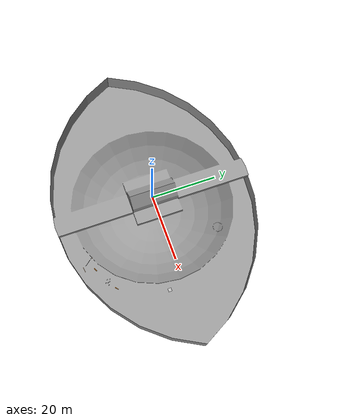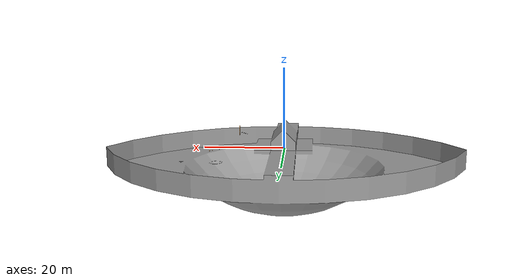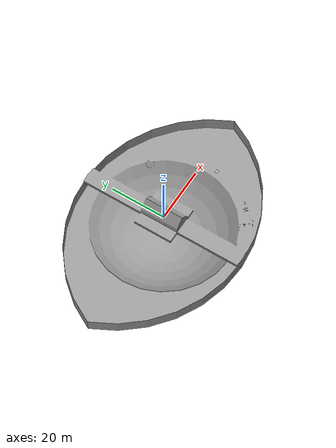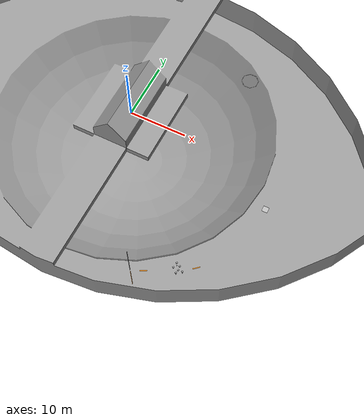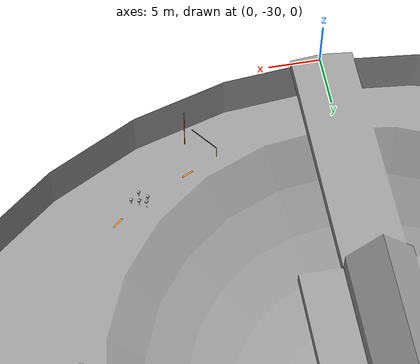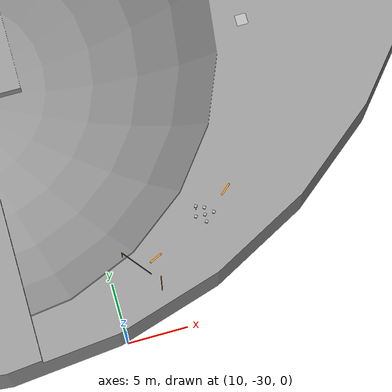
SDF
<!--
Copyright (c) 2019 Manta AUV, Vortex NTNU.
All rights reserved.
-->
<sdf version="1.5">
 <world name="empty_underwater">
  <physics name="default_physics" default="true" type="ode">
   <max_step_size>0.002</max_step_size>
   <real_time_factor>1</real_time_factor>
   <real_time_update_rate>500</real_time_update_rate>
   <ode><solver><type>quick</type><iters>50</iters><sor>0.5</sor></solver></ode>
  </physics>
  <scene>
   <ambient>0.01 0.01 0.01 1.0</ambient>
   <sky><clouds><speed>12</speed></clouds></sky>
   <shadows>1</shadows>
   <fog>
    <color>0.0039 0.26 0.415 1.0</color>
    <type>linear</type>
    <density>0.2</density>
    <start>10</start>
    <end>40</end>
   </fog>
  </scene>
  <spherical_coordinates>
   <latitude_deg>56.71897669633431</latitude_deg>
   <longitude_deg>3.515625</longitude_deg>
  </spherical_coordinates>
  <include><uri>model://sun</uri></include>
  <include><uri>model://octagon</uri><pose>15 15 -0.1 0 0 0</pose></include>
  <include><uri>model://pool</uri></include>
  <include><name>gate_side_a</name><pose>12.4 -23.6 -0.9 0 0 -0.9</pose><uri>model://2018/gate</uri></include>
  <include><name>dice_side_a</name><pose>19.0 -20.2 -5.0 0 0 -0.6</pose><uri>model://2018/dice</uri></include>
  <include>
   <name>path_marker1_side_a</name>
   <pose>14.2 -22.6 -5.0 0 0 -1.13</pose>
   <uri>model://2018/path_markers</uri>
  </include>
  <include>
   <name>path_marker2_side_a</name>
   <pose>21.5 -18.4 -5.0 0 0 -0.85</pose>
   <uri>model://2018/path_markers</uri>
  </include>
  <include><name>roulette</name><pose>27.0 -4.1 -5.0 0 0 0</pose><uri>model://2018/roulette</uri></include>
  <light type="directional" name="sun4">
   <pose>8 -19 10 1.75 0 2.9</pose>
   <diffuse>0.8 0.8 0.8 1</diffuse>
   <specular>0.2 0.2 0.2 1</specular>
   <attenuation>
    <range>1000</range>
    <constant>0.9</constant>
    <linear>0.01</linear>
    <quadratic>0.001</quadratic>
   </attenuation>
   <direction>-0.5 0.1 -0.9</direction>
  </light>
  <plugin name="sc_interface" filename="libuuv_sc_ros_interface_plugin.so"/>
 </world>
</sdf>

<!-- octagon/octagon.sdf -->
<sdf version='1.5'>

  <model name='octagon'>
    <pose>0 0 0 0 0 0</pose>
    <self_collide> 0 </self_collide>
    <static> 1</static>

    <link name='rod1'>
        <pose>0 1.35 0 0 1.5707 0</pose>
        <visual name='rod1_vis'>
          <geometry>
            <cylinder>
              <radius>0.0254</radius>
              <length>1.118</length>
            </cylinder>
          </geometry>
        <material>
          <script>
            <uri>file://media/materials/scripts/gazebo.material</uri>
            <name>Gazebo/White</name>
          </script>
          <diffuse>0.3 0.3 0.3 1</diffuse>
        </material>
        </visual>
        <collision name='rod1_collide'>
          <geometry>
            <cylinder>
              <radius>0.0254</radius>
              <length>1.118</length>
            </cylinder>
          </geometry>
        </collision>
    </link>

    <link name='rod2'>
        <pose>0 -1.35 0 0 1.5707 0</pose>
        <visual name='rod2_vis'>
          <geometry>
            <cylinder>
              <radius>0.0254</radius>
              <length>1.118</length>
            </cylinder>
          </geometry>
        <material>
          <script>
            <uri>file://media/materials/scripts/gazebo.material</uri>
            <name>Gazebo/White</name>
          </script>
          <diffuse>0.3 0.3 0.3 1</diffuse>
        </material>
        </visual>
        <collision name='rod2_collide'>
          <geometry>
            <cylinder>
              <radius>0.0254</radius>
              <length>1.118</length>
            </cylinder>
          </geometry>
        </collision>
    </link>

    <link name='rod3'>
        <pose>1.35 0 0 0 1.5707 1.5707</pose>
        <visual name='rod3_vis'>
          <geometry>
            <cylinder>
              <radius>0.0254</radius>
              <length>1.118</length>
            </cylinder>
          </geometry>
        <material>
          <script>
            <uri>file://media/materials/scripts/gazebo.material</uri>
            <name>Gazebo/White</name>
          </script>
          <diffuse>0.3 0.3 0.3 1</diffuse>
        </material>
        </visual>
        <collision name='rod3_collide'>
          <geometry>
            <cylinder>
              <radius>0.0254</radius>
              <length>1.118</length>
            </cylinder>
          </geometry>
        </collision>
    </link>

    <link name='rod4'>
        <pose>-1.35 0 0 0 1.5707 1.5707</pose>
        <visual name='rod4_vis'>
          <geometry>
            <cylinder>
              <radius>0.0254</radius>
              <length>1.118</length>
            </cylinder>
          </geometry>
        <material>
          <script>
            <uri>file://media/materials/scripts/gazebo.material</uri>
            <name>Gazebo/White</name>
          </script>
          <diffuse>0.3 0.3 0.3 1</diffuse>
        </material>
        </visual>
        <collision name='rod4_collide'>
          <geometry>
            <cylinder>
              <radius>0.0254</radius>
              <length>1.118</length>
            </cylinder>
          </geometry>
        </collision>
    </link>

    <link name='rod5'>
        <pose>0.95 0.95 0 0 1.5707 2.356</pose>
        <visual name='rod5_vis'>
          <geometry>
            <cylinder>
              <radius>0.0254</radius>
              <length>1.118</length>
            </cylinder>
          </geometry>
        <material>
          <script>
            <uri>file://media/materials/scripts/gazebo.material</uri>
            <name>Gazebo/White</name>
          </script>
          <diffuse>0.3 0.3 0.3 1</diffuse>
        </material>
        </visual>
        <collision name='rod5_collide'>
          <geometry>
            <cylinder>
              <radius>0.0254</radius>
              <length>1.118</length>
            </cylinder>
          </geometry>
        </collision>
    </link>

    <link name='rod6'>
        <pose>-0.95 0.95 0 0 1.5707 -2.356</pose>
        <visual name='rod6_vis'>
          <geometry>
            <cylinder>
              <radius>0.0254</radius>
              <length>1.118</length>
            </cylinder>
          </geometry>
        <material>
          <script>
            <uri>file://media/materials/scripts/gazebo.material</uri>
            <name>Gazebo/White</name>
          </script>
          <diffuse>0.3 0.3 0.3 1</diffuse>
        </material>
        </visual>
        <collision name='rod6_collide'>
          <geometry>
            <cylinder>
              <radius>0.0254</radius>
              <length>1.118</length>
            </cylinder>
          </geometry>
        </collision>
    </link>

    <link name='rod7'>
        <pose>-0.95 -0.95 0 0 1.5707 2.356</pose>
        <visual name='rod7_vis'>
          <geometry>
            <cylinder>
              <radius>0.0254</radius>
              <length>1.118</length>
            </cylinder>
          </geometry>
        <material>
          <script>
            <uri>file://media/materials/scripts/gazebo.material</uri>
            <name>Gazebo/White</name>
          </script>
          <diffuse>0.3 0.3 0.3 1</diffuse>
        </material>
        </visual>
        <collision name='rod7_collide'>
          <geometry>
            <cylinder>
              <radius>0.0254</radius>
              <length>1.118</length>
            </cylinder>
          </geometry>
        </collision>
    </link>

    <link name='rod8'>
        <pose>0.95 -0.95 0 0 1.5707 -2.356</pose>
        <visual name='rod8_vis'>
          <geometry>
            <cylinder>
              <radius>0.0254</radius>
              <length>1.118</length>
            </cylinder>
          </geometry>
        <material>
          <script>
            <uri>file://media/materials/scripts/gazebo.material</uri>
            <name>Gazebo/White</name>
          </script>
          <diffuse>0.3 0.3 0.3 1</diffuse>
        </material>
        </visual>
        <collision name='rod8_collide'>
          <geometry>
            <cylinder>
              <radius>0.0254</radius>
              <length>1.118</length>
            </cylinder>
          </geometry>
        </collision>
    </link>
  </model>
</sdf>

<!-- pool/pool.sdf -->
<sdf version='1.5'>

  <model name='transdec_pool'>
    <pose>0 0 0 0 0 0</pose>
    <self_collide> 0 </self_collide>
    <static> 1</static>

    <link name='pool'>
      <pose>0 0 0 0 0 0</pose>
      <visual name='pool_visual'>
        <geometry>
            <mesh><uri>file://pool/pool.dae</uri></mesh>
        </geometry>
        <material>
            <script>
              <uri>file://media/materials/scripts/gazebo.material</uri>
              <name>Gazebo/Grey</name>
            </script>
          </material>
      </visual>
      <collision name='pool_collision'>
        <geometry>
            <mesh><uri>file://pool/pool.dae</uri></mesh>
        </geometry>
      </collision>
    </link>

  </model>
</sdf>

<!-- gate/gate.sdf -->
<sdf version='1.5'>

  <model name='gate'>
    <pose>0 0 0 0 0 0</pose>
    <self_collide> 0 </self_collide>
    <static> 1</static>

    <link name='gate_top'>
      <pose>0 0 0 0 1.5707 0</pose>
      <visual name='gate_top_vis'>
        <geometry>
          <cylinder>
            <radius>0.0381</radius>
            <length>3.05</length>
          </cylinder>
        </geometry>
        <material>
          <script>
            <uri>file://media/materials/scripts/gazebo.material</uri>
            <name>Gazebo/FlatBlack</name>
          </script>
        </material>
      </visual>
      <collision name='gate_top_collide'>
        <geometry>
          <cylinder>
            <radius>0.0381</radius>
            <length>3.05</length>
          </cylinder>
        </geometry>
      </collision>
    </link>

    <link name='gate_right'>
      <pose>2.525 0 -0.762 0 0 0</pose>
      <visual name='gate_right_vis'>
        <geometry>
          <cylinder>
            <radius>0.0381</radius>
            <length>5.21</length>
          </cylinder>
        </geometry>
        <material>
          <script>
            <uri>file://media/materials/scripts/gazebo.material</uri>
            <name>Gazebo/Orange</name>
          </script>
          <diffuse>0.6 0.3088 0.0468 1</diffuse>
        </material>
      </visual>
      <visual name='gate_right_top'>
        <pose>0 0 0.6858 0 0 0</pose>
        <geometry>
          <cylinder>
            <radius>0.0381</radius>
            <length>0.16</length>
          </cylinder>
        </geometry>
        <material>
          <script>
            <uri>file://media/materials/scripts/gazebo.material</uri>
            <name>Gazebo/FlatBlack</name>
          </script>
        </material>
      </visual>
      <visual name='gate_right_bottom'>
        <pose>0 0 -0.6858 0 0 0</pose>
        <geometry>
          <cylinder>
            <radius>0.0381</radius>
            <length>0.16</length>
          </cylinder>
        </geometry>
        <material>
          <script>
              <uri>file://media/materials/scripts/gazebo.material</uri>
              <name>Gazebo/FlatBlack</name>
          </script>
        </material>
      </visual>
      <collision name='gate_right_collide'>
        <geometry>
          <cylinder>
            <radius>0.0381</radius>
            <length>1.52</length>
          </cylinder>
        </geometry>
      </collision>
    </link>

    <link name='gate_left'>
      <pose>-1.525 0 -0.762 0 0 0</pose>
      <visual name='gate_left_vis'>
        <geometry>
          <cylinder>
            <radius>0.0381</radius>
            <length>1.21</length>
          </cylinder>
        </geometry>
        <material>
          <script>
            <uri>file://media/materials/scripts/gazebo.material</uri>
            <name>Gazebo/Orange</name>
          </script>
          <diffuse>0.6 0.3088 0.0468 1</diffuse>
        </material>
      </visual>
      <visual name='gate_left_top'>
        <pose>0 0 0.6858 0 0 0</pose>
        <geometry>
          <cylinder>
            <radius>0.0381</radius>
            <length>0.16</length>
          </cylinder>
        </geometry>
        <material>
          <script>
            <uri>file://media/materials/scripts/gazebo.material</uri>
            <name>Gazebo/FlatBlack</name>
          </script>
        </material>
      </visual>
      <visual name='gate_left_bottom'>
        <pose>0 0 -0.6858 0 0 0</pose>
        <geometry>
          <cylinder>
            <radius>0.0381</radius>
            <length>0.16</length>
          </cylinder>
        </geometry>
        <material>
          <script>
              <uri>file://media/materials/scripts/gazebo.material</uri>
              <name>Gazebo/FlatBlack</name>
          </script>
        </material>
      </visual>
      <collision name='gate_left_collide'>
        <geometry>
          <cylinder>
            <radius>0.0381</radius>
            <length>1.52</length>
          </cylinder>
        </geometry>
      </collision>
    </link>

  </model>
</sdf>

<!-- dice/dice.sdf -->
<sdf version='1.5'>

  <model name='dice'>
    <pose>0 0 0 0 0 0</pose>
    <self_collide> 0 </self_collide>
    <static> 1</static>

    <link name='one_dice'>
      <pose>0.80 0.5 0.75 0 0 0</pose>
      <visual name='one_dice_vis'>
        <geometry>
          <box>
            <size>0.23 0.23 0.23</size>
          </box>
        </geometry>
        <material>
          <script>
            <uri>model://2018/dice/materials/scripts</uri>
            <uri>model://2018/dice/materials/textures</uri>
            <name>OneFace</name>
          </script>
        </material>
      </visual>

      <visual name='one_dice_cable'>
        <pose> 0 0 -0.375 0 0 0</pose>
        <geometry>
          <cylinder>
            <radius> 0.006 </radius>
            <length> 0.75 </length>
          </cylinder>
        </geometry>
        <material>
          <script>
            <uri> file://media/materials/scripts/gazebo.material</uri>
            <name> Gazebo/Grey </name>
          </script>
        </material>
      </visual>

      <collision name='one_dice_collide'>
        <geometry>
          <box>
            <size>0.23 0.23 0.23</size>
          </box>
        </geometry>
      </collision>
    </link>

    <link name='two_dice'>
      <pose>-0.75 0.35 1.25 0 0 0</pose>
      <visual name='two_dice_vis'>
        <geometry>
          <box>
            <size>0.23 0.23 0.23</size>
          </box>
        </geometry>
        <material>
          <script>
            <uri>model://2018/dice/materials/scripts</uri>
            <uri>model://2018/dice/materials/textures</uri>
            <name>TwoFace</name>
          </script>
        </material>
      </visual>

      <visual name='two_dice_cable'>
        <pose> 0 0 -0.625 0 0 0</pose>
        <geometry>
          <cylinder>
            <radius> 0.006 </radius>
            <length> 1.25 </length>
          </cylinder>
        </geometry>
        <material>
          <script>
            <uri> file://media/materials/scripts/gazebo.material</uri>
            <name> Gazebo/Grey </name>
          </script>
        </material>
      </visual>

      <collision name='two_dice_collide'>
        <geometry>
          <box>
            <size>0.23 0.23 0.23</size>
          </box>
        </geometry>
      </collision>
    </link>

    <link name='three_dice'>
      <pose>-0.05 0.50 1.15 0 0 0</pose>
      <visual name='three_dice_vis'>
        <geometry>
          <box>
            <size>0.23 0.23 0.23</size>
          </box>
        </geometry>
        <material>
          <script>
            <uri>model://2018/dice/materials/scripts</uri>
            <uri>model://2018/dice/materials/textures</uri>
            <name>ThreeFace</name>
          </script>
        </material>
      </visual>

      <visual name='three_dice_cable'>
        <pose> 0 0 -0.575 0 0 0</pose>
        <geometry>
          <cylinder>
            <radius> 0.006 </radius>
            <length> 1.15 </length>
          </cylinder>
        </geometry>
        <material>
          <script>
            <uri> file://media/materials/scripts/gazebo.material</uri>
            <name> Gazebo/Grey </name>
          </script>
        </material>
      </visual>

      <collision name='three_dice_collide'>
        <geometry>
          <box>
            <size>0.23 0.23 0.23</size>
          </box>
        </geometry>
      </collision>
    </link>

    <link name='four_dice'>
      <pose>0.5 -0.5 0.8 0 0 0</pose>
      <visual name='four_dice_vis'>
        <geometry>
          <box>
            <size>0.23 0.23 0.23</size>
          </box>
        </geometry>
        <material>
          <script>
            <uri>model://2018/dice/materials/scripts</uri>
            <uri>model://2018/dice/materials/textures</uri>
            <name>FourFace</name>
          </script>
        </material>
      </visual>

      <visual name='four_dice_cable'>
        <pose> 0 0 -0.4 0 0 0</pose>
        <geometry>
          <cylinder>
            <radius> 0.006 </radius>
            <length> 0.8 </length>
          </cylinder>
        </geometry>
        <material>
          <script>
            <uri> file://media/materials/scripts/gazebo.material</uri>
            <name> Gazebo/Grey </name>
          </script>
        </material>
      </visual>

      <collision name='four_dice_collide'>
        <geometry>
          <box>
            <size>0.23 0.23 0.23</size>
          </box>
        </geometry>
      </collision>
    </link>

    <link name='five_dice'>
      <pose>0.15 0.10 0.5 0 0 0</pose>
      <visual name='five_dice_vis'>
        <geometry>
          <box>
            <size>0.23 0.23 0.23</size>
          </box>
        </geometry>
        <material>
          <script>
            <uri>model://2018/dice/materials/scripts</uri>
            <uri>model://2018/dice/materials/textures</uri>
            <name>FiveFace</name>
          </script>
        </material>
      </visual>

      <visual name='five_dice_cable'>
        <pose> 0 0 -0.25 0 0 0</pose>
        <geometry>
          <cylinder>
            <radius> 0.006 </radius>
            <length> 0.5 </length>
          </cylinder>
        </geometry>
        <material>
          <script>
            <uri> file://media/materials/scripts/gazebo.material</uri>
            <name> Gazebo/Grey </name>
          </script>
        </material>
      </visual>

      <collision name='five_dice_collide'>
        <geometry>
          <box>
            <size>0.23 0.23 0.23</size>
          </box>
        </geometry>
      </collision>
    </link>

    <link name='six_dice'>
      <pose>-0.5 -0.4 0.85 0 0 0</pose>
      <visual name='six_dice_vis'>
        <geometry>
          <box>
            <size>0.23 0.23 0.23</size>
          </box>
        </geometry>
        <material>
          <script>
            <uri>model://2018/dice/materials/scripts</uri>
            <uri>model://2018/dice/materials/textures</uri>
            <name>SixFace</name>
          </script>
        </material>
      </visual>

      <visual name='six_dice_cable'>
        <pose> 0 0 -0.425 0 0 0</pose>
        <geometry>
          <cylinder>
            <radius> 0.006 </radius>
            <length> 0.85 </length>
          </cylinder>
        </geometry>
        <material>
          <script>
            <uri> file://media/materials/scripts/gazebo.material</uri>
            <name> Gazebo/Grey </name>
          </script>
        </material>
      </visual>

      <collision name='six_dice_collide'>
        <geometry>
          <box>
            <size>0.23 0.23 0.23</size>
          </box>
        </geometry>
      </collision>
    </link>

  </model>

</sdf>

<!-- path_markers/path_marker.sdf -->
<sdf version='1.5'>

  <model name='path_marker'>
    <pose>0 0 0 0 0 0</pose>
    <self_collide> 0 </self_collide>
    <static> 1</static>

    <link name='top'>
      <pose>0 0 0 0 0 0</pose>
      <visual name='top_vis'>
        <geometry>
            <box><size>0.15 1.2 0.02</size></box>
        </geometry>
        <material>
          <script>
            <uri>file://media/materials/scripts/gazebo.material</uri>
            <name>Gazebo/Orange</name>
          </script>
          <diffuse>0.6 0.3088 0.0468 1</diffuse>
        </material>
      </visual>
      <collision name='red_collide'>
        <pose>0 0 0 0 0 0</pose>
        <geometry>
            <box><size>0.15 1.2 0.02</size></box>
        </geometry>
      </collision>
    </link>

    <link name='legs'>
      <visual name='leg1'>
        <pose>0 0.5 -0.225 0 0 0</pose>
        <geometry>
          <cylinder>
            <radius>0.01</radius>
            <length>0.45</length>
          </cylinder>
        </geometry>
      </visual>
      <visual name='leg2'>
        <pose>0 -0.5 -0.225 0 0 0</pose>
        <geometry>
          <cylinder>
            <radius>0.01</radius>
            <length>0.45</length>
          </cylinder>
        </geometry>
      </visual>
      <visual name='leg_link'>
        <pose>0 0 -0.45 1.5707 0 0</pose>
        <geometry>
          <cylinder>
            <radius>0.01</radius>
            <length>1</length>
          </cylinder>
        </geometry>
      </visual>
      <collision name='leg_col'>
        <pose>0 0 -0.225 0 0 0</pose>
          <geometry>
            <box><size>0.15 1.2 0.45</size></box>
          </geometry>
      </collision>
    </link>

  </model>
</sdf>

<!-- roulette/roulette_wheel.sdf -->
<sdf version='1.5'>
  <model name='roulette_wheel'>

    <pose> 0 0 0 0 0 0</pose>
    <self_collide> 0 </self_collide>
    <static>0</static>

    <joint name='rotation_joint' type="revolute">
      <parent> roulette_stock </parent>
      <child> roulette_wheel </child>
      <axis>
        <xyz> 0 0 1 </xyz>
      </axis>
      <physics>
        <ode>
          <velocity> 1 </velocity>
        </ode>
      </physics>
    </joint>

    <link name='roulette_wheel'>
      <pose> 0 0 0.35 0 0 0</pose>
      <visual name='roulette_top'>
        <geometry>
          <box>
            <size>1.0 1.00 0.001</size>
          </box>
        </geometry>
        <material>
          <script>
            <uri>model://2018/roulette/materials/scripts</uri>
            <uri>model://2018/roulette/materials/textures</uri>
            <name>Roulette/Face</name>
          </script>
        </material>
      </visual>

      <collision name="roulette_wheel_collision">
        <geometry>
          <box>
            <size>1.0 1.00 0.001</size>
          </box>
        </geometry>
      </collision>
    </link>

    <link name='roulette_stock'>
      <pose> 0 0 0.174 0 0 0 </pose>
      <visual name='roulette_stock_vis'>
        <geometry>
          <cylinder>
            <radius>0.035</radius>
            <length>0.35</length>
          </cylinder>
        </geometry>
        <material>
          <script>
            <uri>file://media/materials/scripts/gazebo.material</uri>
            <name>Gazebo/Grey</name>
          </script>
        </material>
      </visual>
      <collision name='roulette_collide'>
        <geometry>
          <cylinder>
            <radius>0.5</radius>
            <length>0.35</length>
          </cylinder>
        </geometry>
      </collision>
    </link>

  </model>
</sdf>
